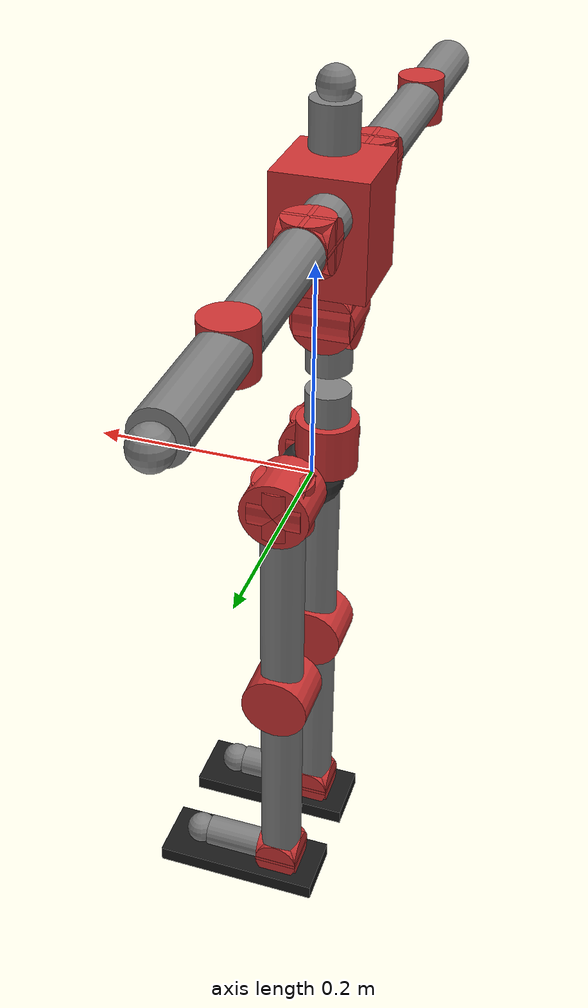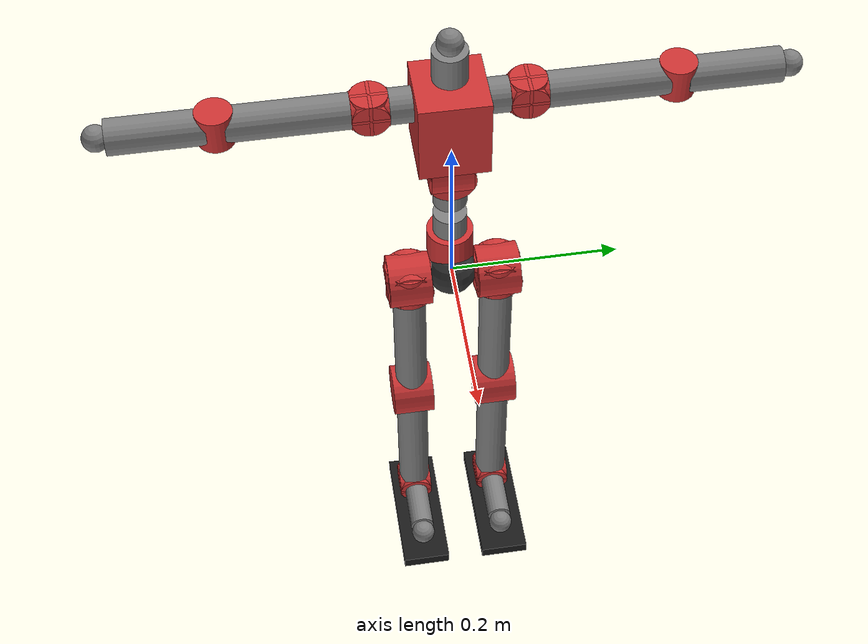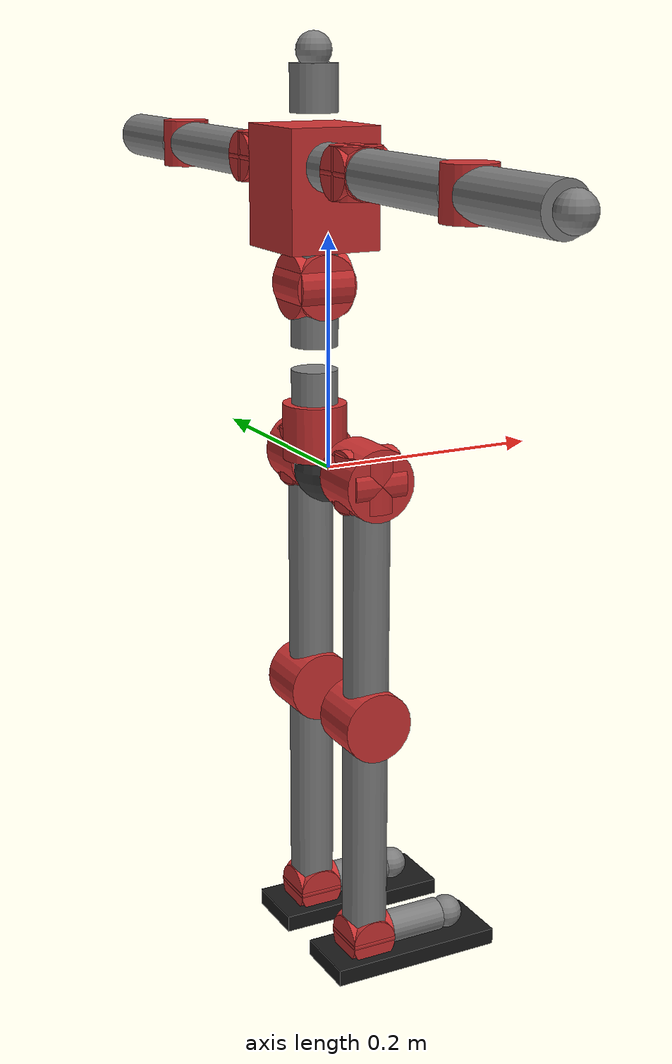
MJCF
<mujoco model="custom_g1_bot">
  <compiler angle="radian" meshdir="meshes/"/>

  <worldbody>
    <body name="pelvis">
      <inertial pos="0 0 0" mass="0.01" diaginertia="1e-05 1e-05 1e-05"/>
      <joint name="floating_base_joint" type="free"/>
      <geom size="0.03" contype="0" conaffinity="0" group="1" density="0" rgba="0.2 0.2 0.2 1"/>
      <geom size="0.03" rgba="0.2 0.2 0.2 1"/>
      <body name="left_hip_pitch_link" pos="0.0093 0.0527 0.0005">
        <inertial pos="0 0 0" quat="0.5 0.5 -0.5 0.5" mass="0.48" diaginertia="0.000238 0.00022 0.00022"/>
        <joint name="left_hip_pitch_joint" pos="0 0 0" axis="0 1 0" range="-3.14 3.14" actuatorfrcrange="-55 55" damping="0.1"/>
        <geom size="0.0315 0.0251" quat="0.707105 0.707108 0 0" type="cylinder" contype="0" conaffinity="0" group="1" density="0" rgba="0.8 0.2 0.2 1"/>
        <geom size="0.0315 0.0251" quat="0.707105 0.707108 0 0" type="cylinder" rgba="0.8 0.2 0.2 1"/>
        <body name="left_hip_roll_link">
          <inertial pos="0 0 0" mass="0.38" diaginertia="0.000145 0.000145 0.000144"/>
          <joint name="left_hip_roll_joint" pos="0 0 0" axis="1 0 0" range="-3.14 3.14" actuatorfrcrange="-25 25" damping="0.1"/>
          <geom size="0.0275 0.024" quat="0.707105 0 0.707108 0" type="cylinder" contype="0" conaffinity="0" group="1" density="0" rgba="0.8 0.2 0.2 1"/>
          <geom size="0.0275 0.024" quat="0.707105 0 0.707108 0" type="cylinder" rgba="0.8 0.2 0.2 1"/>
          <body name="left_hip_yaw_link">
            <inertial pos="0 0 -0.006667" mass="0.4048" diaginertia="0.000503 0.000503 0.000149"/>
            <joint name="left_hip_yaw_joint" pos="0 0 0" axis="0 0 1" range="-3.14 3.14" actuatorfrcrange="-25 25" damping="0.1"/>
            <geom size="0.0275 0.024" type="cylinder" contype="0" conaffinity="0" group="1" density="0" rgba="0.8 0.2 0.2 1"/>
            <geom size="0.02 0.09875" pos="0 0 -0.1087" quat="-3.67321e-06 0 1 0" type="cylinder" contype="0" conaffinity="0" group="1" density="0"/>
            <geom size="0.0275 0.024" type="cylinder"/>
            <body name="left_knee_link" pos="0 0 -0.2175">
              <inertial pos="0 0 -0.005066" mass="0.5041" diaginertia="0.000554 0.000554 0.000243"/>
              <joint name="left_knee_joint" pos="0 0 0" axis="0 1 0" range="-3.14 3.14" actuatorfrcrange="-55 55" damping="0.1"/>
              <geom size="0.0315 0.0251" quat="0.707105 0.707108 0 0" type="cylinder" contype="0" conaffinity="0" group="1" density="0" rgba="0.8 0.2 0.2 1"/>
              <geom size="0.02 0.0959305" pos="0 0 -0.1059" quat="-3.67321e-06 0 1 0" type="cylinder" contype="0" conaffinity="0" group="1" density="0"/>
              <geom size="0.0315 0.0251" quat="0.707105 0.707108 0 0" type="cylinder"/>
              <body name="left_ankle_pitch_link" pos="0 0 -0.2119">
                <inertial pos="0 0 0" mass="0.28" diaginertia="7.1e-05 7.1e-05 6.2e-05"/>
                <joint name="left_ankle_pitch_joint" pos="0 0 0" axis="0 1 0" range="-3.14 3.14" actuatorfrcrange="-10 10" damping="0.1"/>
                <geom size="0.021 0.02075" quat="0.707105 0.707108 0 0" type="cylinder" contype="0" conaffinity="0" group="1" density="0" rgba="0.8 0.2 0.2 1"/>
                <geom size="0.021 0.02075" quat="0.707105 0.707108 0 0" type="cylinder" rgba="0.8 0.2 0.2 1"/>
                <body name="left_ankle_roll_link">
                  <inertial pos="0.026041 0 -0.009453" quat="0 0.707107 0 0.707107" mass="0.6347" diaginertia="0.001229 0.001219 0.000236"/>
                  <joint name="left_ankle_roll_joint" pos="0 0 0" axis="1 0 0" range="-3.14 3.14" actuatorfrcrange="-10 10" damping="0.1"/>
                  <geom size="0.021 0.02075" quat="0.707105 0 0.707108 0" type="cylinder" contype="0" conaffinity="0" group="1" density="0" rgba="0.8 0.2 0.2 1"/>
                  <geom size="0.015 0.03325" pos="0.0432 0 0" quat="0.707105 0 0.707108 0" type="cylinder" contype="0" conaffinity="0" group="1" density="0"/>
                  <geom size="0.08 0.03 0.0075" pos="0.04 0 -0.02" type="box" contype="0" conaffinity="0" group="1" density="0" rgba="0.1 0.1 0.1 1"/>
                  <geom size="0.015" pos="0.0865 0 0" contype="0" conaffinity="0" group="1" density="0"/>
                  <geom size="0.021 0.02075" quat="0.707105 0 0.707108 0" type="cylinder"/>
                  <geom size="0.08 0.03 0.0075" pos="0.04 0 -0.02" type="box"/>
                  <geom size="0.015" pos="0.0865 0 0"/>
                </body>
              </body>
            </body>
          </body>
        </body>
      </body>
      <body name="right_hip_pitch_link" pos="0.0093 -0.0527 0.0005">
        <inertial pos="0 0 0" quat="0.5 0.5 -0.5 0.5" mass="0.48" diaginertia="0.000238 0.00022 0.00022"/>
        <joint name="right_hip_pitch_joint" pos="0 0 0" axis="0 1 0" range="-3.14 3.14" actuatorfrcrange="-55 55" damping="0.1"/>
        <geom size="0.0315 0.0251" quat="0.707105 0.707108 0 0" type="cylinder" contype="0" conaffinity="0" group="1" density="0" rgba="0.8 0.2 0.2 1"/>
        <geom size="0.0315 0.0251" quat="0.707105 0.707108 0 0" type="cylinder" rgba="0.8 0.2 0.2 1"/>
        <body name="right_hip_roll_link">
          <inertial pos="0 0 0" mass="0.38" diaginertia="0.000145 0.000145 0.000144"/>
          <joint name="right_hip_roll_joint" pos="0 0 0" axis="1 0 0" range="-3.14 3.14" actuatorfrcrange="-25 25" damping="0.1"/>
          <geom size="0.0275 0.024" quat="0.707105 0 0.707108 0" type="cylinder" contype="0" conaffinity="0" group="1" density="0" rgba="0.8 0.2 0.2 1"/>
          <geom size="0.0275 0.024" quat="0.707105 0 0.707108 0" type="cylinder" rgba="0.8 0.2 0.2 1"/>
          <body name="right_hip_yaw_link">
            <inertial pos="0 0 -0.006667" mass="0.4048" diaginertia="0.000503 0.000503 0.000149"/>
            <joint name="right_hip_yaw_joint" pos="0 0 0" axis="0 0 1" range="-3.14 3.14" actuatorfrcrange="-25 25" damping="0.1"/>
            <geom size="0.0275 0.024" type="cylinder" contype="0" conaffinity="0" group="1" density="0" rgba="0.8 0.2 0.2 1"/>
            <geom size="0.02 0.09875" pos="0 0 -0.1087" quat="-3.67321e-06 0 1 0" type="cylinder" contype="0" conaffinity="0" group="1" density="0"/>
            <geom size="0.0275 0.024" type="cylinder"/>
            <body name="right_knee_link" pos="0 0 -0.2175">
              <inertial pos="0 0 -0.005066" mass="0.5041" diaginertia="0.000554 0.000554 0.000243"/>
              <joint name="right_knee_joint" pos="0 0 0" axis="0 1 0" range="-3.14 3.14" actuatorfrcrange="-55 55" damping="0.1"/>
              <geom size="0.0315 0.0251" quat="0.707105 0.707108 0 0" type="cylinder" contype="0" conaffinity="0" group="1" density="0" rgba="0.8 0.2 0.2 1"/>
              <geom size="0.02 0.0959305" pos="0 0 -0.1059" quat="-3.67321e-06 0 1 0" type="cylinder" contype="0" conaffinity="0" group="1" density="0"/>
              <geom size="0.0315 0.0251" quat="0.707105 0.707108 0 0" type="cylinder"/>
              <body name="right_ankle_pitch_link" pos="0 0 -0.2119">
                <inertial pos="0 0 0" mass="0.28" diaginertia="7.1e-05 7.1e-05 6.2e-05"/>
                <joint name="right_ankle_pitch_joint" pos="0 0 0" axis="0 1 0" range="-3.14 3.14" actuatorfrcrange="-10 10" damping="0.1"/>
                <geom size="0.021 0.02075" quat="0.707105 0.707108 0 0" type="cylinder" contype="0" conaffinity="0" group="1" density="0" rgba="0.8 0.2 0.2 1"/>
                <geom size="0.021 0.02075" quat="0.707105 0.707108 0 0" type="cylinder" rgba="0.8 0.2 0.2 1"/>
                <body name="right_ankle_roll_link">
                  <inertial pos="0.026041 0 -0.009453" quat="0 0.707107 0 0.707107" mass="0.6347" diaginertia="0.001229 0.001219 0.000236"/>
                  <joint name="right_ankle_roll_joint" pos="0 0 0" axis="1 0 0" range="-3.14 3.14" actuatorfrcrange="-10 10" damping="0.1"/>
                  <geom size="0.021 0.02075" quat="0.707105 0 0.707108 0" type="cylinder" contype="0" conaffinity="0" group="1" density="0" rgba="0.8 0.2 0.2 1"/>
                  <geom size="0.015 0.03325" pos="0.0432 0 0" quat="0.707105 0 0.707108 0" type="cylinder" contype="0" conaffinity="0" group="1" density="0"/>
                  <geom size="0.08 0.03 0.0075" pos="0.04 0 -0.02" type="box" contype="0" conaffinity="0" group="1" density="0" rgba="0.1 0.1 0.1 1"/>
                  <geom size="0.015" pos="0.0865 0 0" contype="0" conaffinity="0" group="1" density="0"/>
                  <geom size="0.021 0.02075" quat="0.707105 0 0.707108 0" type="cylinder"/>
                  <geom size="0.08 0.03 0.0075" pos="0.04 0 -0.02" type="box"/>
                  <geom size="0.015" pos="0.0865 0 0"/>
                </body>
              </body>
            </body>
          </body>
        </body>
      </body>
      <body name="waist_yaw_link" pos="-0.013 0 0.0345">
        <inertial pos="0 0 0.001693" mass="0.3906" diaginertia="0.000198 0.000198 0.000146"/>
        <joint name="waist_yaw_joint" pos="0 0 0" axis="0 0 1" range="-3.14 3.14" actuatorfrcrange="-25 25" damping="0.1"/>
        <geom size="0.0275 0.024" type="cylinder" contype="0" conaffinity="0" group="1" density="0" rgba="0.8 0.2 0.2 1"/>
        <geom size="0.02 0.02147" pos="0 0 0.0315" type="cylinder" contype="0" conaffinity="0" group="1" density="0"/>
        <geom size="0.02 0.020858" pos="0 0 0.0938" type="cylinder" contype="0" conaffinity="0" group="1" density="0"/>
        <geom size="0.0275 0.024" type="cylinder"/>
        <body name="waist_roll_link" pos="0 0 0.1247">
          <inertial pos="0 0 0" mass="0.38" diaginertia="0.000145 0.000145 0.000144"/>
          <joint name="waist_roll_joint" pos="0 0 0" axis="1 0 0" range="-3.14 3.14" actuatorfrcrange="-25 25" damping="0.1"/>
          <geom size="0.0275 0.024" quat="0.707105 0 0.707108 0" type="cylinder" contype="0" conaffinity="0" group="1" density="0" rgba="0.8 0.2 0.2 1"/>
          <geom size="0.0275 0.024" quat="0.707105 0 0.707108 0" type="cylinder" rgba="0.8 0.2 0.2 1"/>
          <body name="torso_pitch_link">
            <inertial pos="-2.8e-05 0 0.069968" mass="2.4578" diaginertia="0.005736 0.005706 0.002319"/>
            <joint name="torso_pitch_joint" pos="0 0 0" axis="0 1 0" range="-3.14 3.14" actuatorfrcrange="-25 25" damping="0.1"/>
            <geom size="0.0275 0.024" quat="0.707105 0.707108 0 0" type="cylinder" contype="0" conaffinity="0" group="1" density="0" rgba="0.8 0.2 0.2 1"/>
            <geom size="0.02 0.054582" pos="0 0 0.0646" type="cylinder" contype="0" conaffinity="0" group="1" density="0"/>
            <geom size="0.02 0.0194165" pos="0 0 0.1586" type="cylinder" contype="0" conaffinity="0" group="1" density="0"/>
            <geom size="0.015" pos="0 0 0.188" contype="0" conaffinity="0" group="1" density="0"/>
            <geom size="0.02 0.0182105" pos="-0.0074 0.0582 0.0987" quat="0.707105 -0.707108 0 0" type="cylinder" contype="0" conaffinity="0" group="1" density="0"/>
            <geom size="0.02 0.0182105" pos="-0.0074 -0.0582 0.0987" quat="0.707105 0.707108 0 0" type="cylinder" contype="0" conaffinity="0" group="1" density="0"/>
            <geom size="0.04 0.04 0.05" pos="0 0 0.08" type="box" contype="0" conaffinity="0" group="1" density="0" rgba="0.8 0.2 0.2 1"/>
            <geom size="0.0275 0.024" quat="0.707105 0.707108 0 0" type="cylinder" rgba="0.8 0.2 0.2 1"/>
            <geom size="0.015" pos="0 0 0.188" rgba="0.8 0.2 0.2 1"/>
            <geom size="0.04 0.04 0.05" pos="0 0 0.08" type="box" rgba="0.8 0.2 0.2 1"/>
            <body name="left_shoulder_pitch_link" pos="-0.0074 0.0864 0.0987">
              <inertial pos="0 0 0" mass="0.28" diaginertia="7.1e-05 7.1e-05 6.2e-05"/>
              <joint name="left_shoulder_pitch_joint" pos="0 0 0" axis="0 1 0" range="-3.14 3.14" actuatorfrcrange="-10 10" damping="0.1"/>
              <geom size="0.021 0.02075" quat="0.707105 0.707108 0 0" type="cylinder" contype="0" conaffinity="0" group="1" density="0" rgba="0.8 0.2 0.2 1"/>
              <geom size="0.021 0.02075" quat="0.707105 0.707108 0 0" type="cylinder" rgba="0.8 0.2 0.2 1"/>
              <body name="left_shoulder_roll_link">
                <inertial pos="0 0 0" mass="0.28" diaginertia="7.1e-05 7.1e-05 6.2e-05"/>
                <joint name="left_shoulder_roll_joint" pos="0 0 0" axis="1 0 0" range="-3.14 3.14" actuatorfrcrange="-10 10" damping="0.1"/>
                <geom size="0.021 0.02075" quat="0.707105 0 0.707108 0" type="cylinder" contype="0" conaffinity="0" group="1" density="0" rgba="0.8 0.2 0.2 1"/>
                <geom size="0.021 0.02075" quat="0.707105 0 0.707108 0" type="cylinder" rgba="0.8 0.2 0.2 1"/>
                <body name="left_shoulder_yaw_link">
                  <inertial pos="0 0.005041 0" quat="0.707107 0.707107 0 0" mass="0.2982" diaginertia="0.000221 0.000182 0.000105"/>
                  <joint name="left_shoulder_yaw_joint" pos="0 0 0" axis="0 0 1" range="-3.14 3.14" actuatorfrcrange="-10 10" damping="0.1"/>
                  <geom size="0.021 0.02075" type="cylinder" contype="0" conaffinity="0" group="1" density="0" rgba="0.8 0.2 0.2 1"/>
                  <geom size="0.02 0.0725" pos="0 0.0825 0" quat="0.707105 -0.707108 0 0" type="cylinder" contype="0" conaffinity="0" group="1" density="0"/>
                  <geom size="0.021 0.02075" type="cylinder"/>
                  <body name="left_elbow_link" pos="0 0.165 0">
                    <inertial pos="0 0.020795 0" quat="0.707107 0.707107 0 0" mass="0.3433" diaginertia="0.000788 0.000767 8.9e-05"/>
                    <joint name="left_elbow_joint" pos="0 0 0" axis="0 0 1" range="-3.14 3.14" actuatorfrcrange="-10 10" damping="0.1"/>
                    <geom size="0.021 0.02075" type="cylinder" contype="0" conaffinity="0" group="1" density="0" rgba="0.8 0.2 0.2 1"/>
                    <geom size="0.02 0.053" pos="0 0.063 0" quat="0.707105 -0.707108 0 0" type="cylinder" contype="0" conaffinity="0" group="1" density="0"/>
                    <geom size="0.015" pos="0 0.126 0" contype="0" conaffinity="0" group="1" density="0"/>
                    <geom size="0.021 0.02075" type="cylinder"/>
                    <geom size="0.015" pos="0 0.126 0"/>
                  </body>
                </body>
              </body>
            </body>
            <body name="right_shoulder_pitch_link" pos="-0.0074 -0.0864 0.0987">
              <inertial pos="0 0 0" mass="0.28" diaginertia="7.1e-05 7.1e-05 6.2e-05"/>
              <joint name="right_shoulder_pitch_joint" pos="0 0 0" axis="0 1 0" range="-3.14 3.14" actuatorfrcrange="-10 10" damping="0.1"/>
              <geom size="0.021 0.02075" quat="0.707105 0.707108 0 0" type="cylinder" contype="0" conaffinity="0" group="1" density="0" rgba="0.8 0.2 0.2 1"/>
              <geom size="0.021 0.02075" quat="0.707105 0.707108 0 0" type="cylinder" rgba="0.8 0.2 0.2 1"/>
              <body name="right_shoulder_roll_link">
                <inertial pos="0 0 0" mass="0.28" diaginertia="7.1e-05 7.1e-05 6.2e-05"/>
                <joint name="right_shoulder_roll_joint" pos="0 0 0" axis="1 0 0" range="-3.14 3.14" actuatorfrcrange="-10 10" damping="0.1"/>
                <geom size="0.021 0.02075" quat="0.707105 0 0.707108 0" type="cylinder" contype="0" conaffinity="0" group="1" density="0" rgba="0.8 0.2 0.2 1"/>
                <geom size="0.021 0.02075" quat="0.707105 0 0.707108 0" type="cylinder" rgba="0.8 0.2 0.2 1"/>
                <body name="right_shoulder_yaw_link">
                  <inertial pos="0 -0.005041 0" quat="0.707107 0.707107 0 0" mass="0.2982" diaginertia="0.000221 0.000182 0.000105"/>
                  <joint name="right_shoulder_yaw_joint" pos="0 0 0" axis="0 0 1" range="-3.14 3.14" actuatorfrcrange="-10 10" damping="0.1"/>
                  <geom size="0.021 0.02075" type="cylinder" contype="0" conaffinity="0" group="1" density="0" rgba="0.8 0.2 0.2 1"/>
                  <geom size="0.02 0.0725005" pos="0 -0.0825 0" quat="0.707105 0.707108 0 0" type="cylinder" contype="0" conaffinity="0" group="1" density="0"/>
                  <geom size="0.021 0.02075" type="cylinder"/>
                  <body name="right_elbow_link" pos="0 -0.165 0">
                    <inertial pos="0 -0.020794 0" quat="0.707107 0.707107 0 0" mass="0.3433" diaginertia="0.000788 0.000767 8.9e-05"/>
                    <joint name="right_elbow_joint" pos="0 0 0" axis="0 0 1" range="-3.14 3.14" actuatorfrcrange="-10 10" damping="0.1"/>
                    <geom size="0.021 0.02075" type="cylinder" contype="0" conaffinity="0" group="1" density="0" rgba="0.8 0.2 0.2 1"/>
                    <geom size="0.02 0.0529995" pos="0 -0.063 0" quat="0.707105 0.707108 0 0" type="cylinder" contype="0" conaffinity="0" group="1" density="0"/>
                    <geom size="0.015" pos="0 -0.126 0" contype="0" conaffinity="0" group="1" density="0"/>
                    <geom size="0.021 0.02075" type="cylinder"/>
                    <geom size="0.015" pos="0 -0.126 0"/>
                  </body>
                </body>
              </body>
            </body>
          </body>
        </body>
      </body>
    </body>
  </worldbody>
</mujoco>
